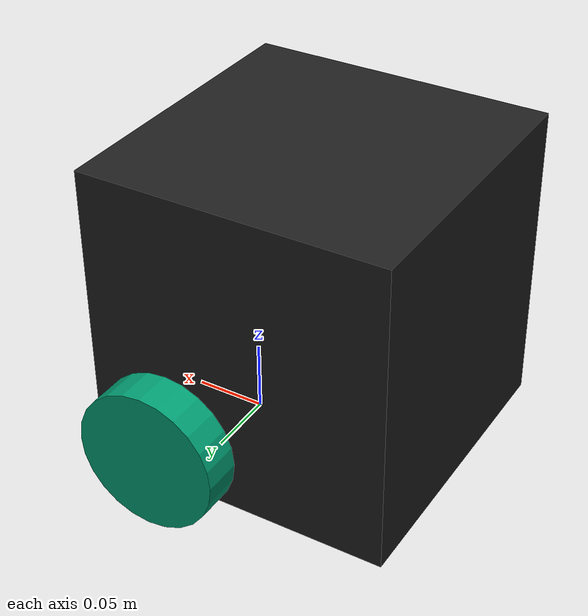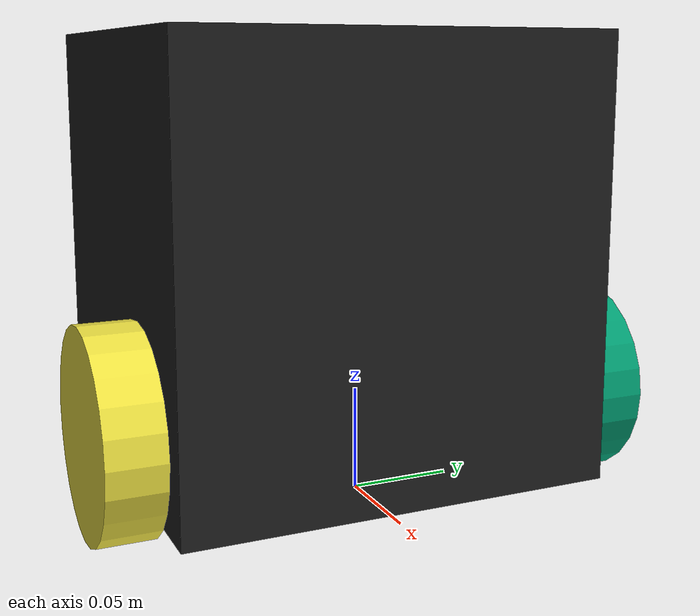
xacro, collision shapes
<?xml version="1.0" ?>
<robot name="turtlebot3_burger" xmlns:xacro="http://www.ros.org/wiki/xacro">

    <!-- Include common properties -->

    <!-- Define material colors -->
    <xacro:property name="black" value="0.0 0.0 0.0 1.0"/>
    <xacro:property name="dark" value="0.3 0.3 0.3 1.0"/>
    <xacro:property name="light_black" value="0.4 0.4 0.4 1.0"/>
    <xacro:property name="blue" value="0.0 0.0 0.8 1.0"/>
    <xacro:property name="green" value="0.0 0.8 0.0 1.0"/>
    <xacro:property name="grey" value="0.5 0.5 0.5 1.0"/>
    <xacro:property name="orange" value="1.0 0.4235 0.0392 1.0"/>
    <xacro:property name="brown" value="0.8706 0.8118 0.7647 1.0"/>
    <xacro:property name="red" value="0.8 0.0 0.0 1.0"/>
    <xacro:property name="white" value="1.0 1.0 1.0 1.0"/>

    <!-- Base Link -->
    <link name="base_footprint"/>

    <!-- Base Joint -->
    <joint name="base_joint" type="fixed">
            <parent link="base_footprint"/>
            <child link="base_link"/>
            <origin xyz="0.0 0.0 0.010" rpy="0 0 0"/>
    </joint>

    <!-- Base Link Definition -->
    <link name="base_link">
        <visual>
            <origin xyz="-0.032 0 0.0" rpy="0 0 0"/>
            <geometry>
                <mesh filename="package://turtlebot3_gazebo/models/turtlebot3_common/meshes/burger_base.dae" scale="0.0015 0.0015 0.0015"/>
            </geometry>
            <material name="light_black"/>
        </visual>

        <collision>
            <origin xyz="-0.048 0 0.105" rpy="0 0 0"/>
            <geometry>
                <box size="0.210 0.210 0.2145"/>
            </geometry>
        </collision>

        <inertial>
            <origin xyz="0 0 0" rpy="0 0 0"/>
            <mass value="1.239e+00"/>
            <inertia ixx="4.977e-03" ixy="-1.844e-05" ixz="5.240e-05" iyy="4.768e-03" iyz="-7.518e-06" izz="4.510e-03"/>
        </inertial>
    </link>

    <!-- Left Wheel Joint -->
    <joint name="left_wheel_joint" type="continuous">
        <parent link="base_link"/>
        <child link="left_wheel"/>
        <origin xyz="0.0 0.12 0.0345" rpy="-1.57 0 0"/>
        <axis xyz="0 0 1"/>
    </joint>

    <!-- Left Wheel Definition -->
    <link name="left_wheel">
        <visual>
            <origin xyz="0 0 0" rpy="1.57 0 0"/>
            <geometry>
                <mesh filename="package://turtlebot3_gazebo/models/turtlebot3_common/meshes/tire.dae" scale="0.0015 0.0015 0.0015"/>
            </geometry>
            <material name="dark"/>
        </visual>

        <collision>
            <origin xyz="0 0 0" rpy="0 0 0"/>
            <geometry>
                <cylinder length="0.027" radius="0.0495"/>
            </geometry>
        </collision>

        <inertial>
            <origin xyz="0 0 0"/>
            <mass value="2.8498940e-02"/>
            <inertia ixx="1.1175580e-05" ixy="-4.2369783e-11" ixz="-5.9381719e-09" iyy="1.1192413e-05" iyz="-1.4400107e-11" izz="2.0712558e-05"/>
        </inertial>
    </link>

    <!-- Right Wheel Joint -->
    <joint name="right_wheel_joint" type="continuous">
        <parent link="base_link"/>
        <child link="right_wheel"/>
        <origin xyz="0.0 -0.120 0.0345" rpy="-1.57 0 0"/>
        <axis xyz="0 0 1"/>
    </joint>

    <!-- Right Wheel Definition -->
    <link name="right_wheel">
        <visual>
            <origin xyz="0 0 0" rpy="1.57 0 0"/>
            <geometry>
                <mesh filename="package://turtlebot3_gazebo/models/turtlebot3_common/meshes/tire.dae" scale="0.0015 0.0015 0.0015"/>
            </geometry>
            <material name="dark"/>
        </visual>

        <collision>
            <origin xyz="0 0 0" rpy="0 0 0"/>
            <geometry>
                <cylinder length="0.027" radius="0.0495"/>
            </geometry>
        </collision>

        <inertial>
            <origin xyz="0 0 0"/>
            <mass value="2.8498940e-02"/>
            <inertia ixx="1.1175580e-05" ixy="-4.2369783e-11" ixz="-5.9381719e-09" iyy="1.1192413e-05" iyz="-1.4400107e-11" izz="2.0712558e-05"/>
        </inertial>
    </link>

    <!-- Caster Back Joint -->
    <joint name="caster_back_joint" type="fixed">
        <parent link="base_link"/>
        <child link="caster_back_link"/>
        <origin xyz="-0.1215 0 -0.006" rpy="-1.57 0 0"/>
    </joint>

    <!-- Caster Back Link Definition -->
    <link name="caster_back_link">
        <collision>
            <origin xyz="0 0.001 0" rpy="0 0 0"/>
            <geometry>
                <box size="0.045 0.0135 0.030"/>
            </geometry>
        </collision>

        <inertial>
            <origin xyz="0 0 0"/>
            <mass value="0.0075"/>
            <inertia ixx="0.001" ixy="0.0" ixz="0.0" iyy="0.001" iyz="0.0" izz="0.001"/>
        </inertial>
    </link>

    <!-- IMU Joint -->
    <joint name="imu_joint" type="fixed">
        <parent link="base_link"/>
        <child link="imu_link"/>
        <origin xyz="-0.048 0 0.0102" rpy="0 0 0"/>
    </joint>

    <!-- IMU Link -->
    <link name="imu_link"/>

    <!-- Scan Joint -->
    <joint name="scan_joint" type="fixed">
        <parent link="base_link"/>
        <child link="base_scan"/>
        <origin xyz="-0.032 0 0.172" rpy="0 0 0"/>
    </joint>

    <!-- Scan Link Definition -->
    <link name="base_scan">
        <visual>
            <origin xyz="0 0 0.0" rpy="0 0 0"/>
            <geometry>
                <mesh filename="package://turtlebot3_gazebo/models/turtlebot3_common/meshes/lds.dae" scale="0.0015 0.0015 0.0015"/>
            </geometry>
            <material name="dark"/>
        </visual>

        <collision>
            <origin xyz="0.015 0 -0.0065" rpy="0 0 0"/>
            <geometry>
                <cylinder length="0.0315" radius="0.055"/>
            </geometry>
        </collision>

        <inertial>
            <mass value="0.129"/>
            <inertia ixx="1.57e-05" ixy="0.0" ixz="0.0" iyy="1.57e-05" iyz="0.0" izz="1.57e-05"/>
        </inertial>
    </link>

</robot>
